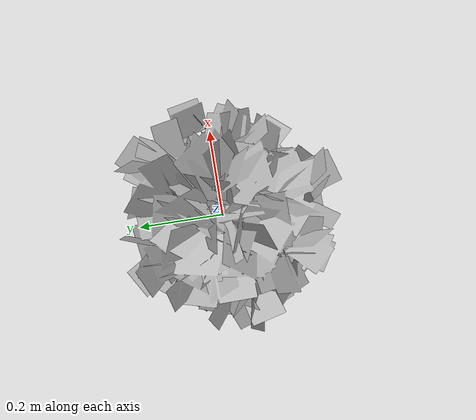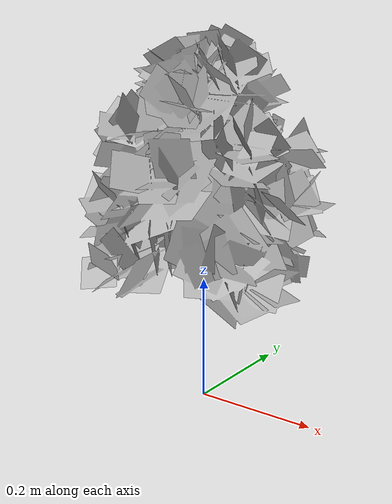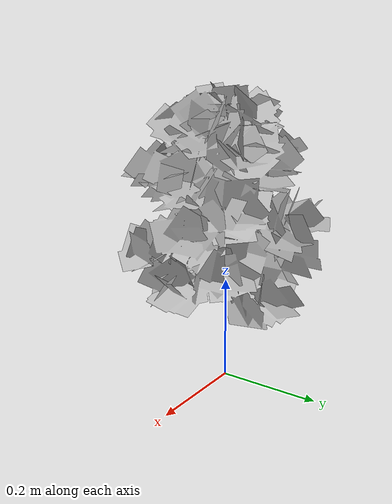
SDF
<?xml version="1.0" ?>
<sdf version="1.6">
  <model name="low_poly_stylized_mossy_rocks">
    <static>true</static>
    <link name="link">
      <visual name="visual">
        <geometry>
          <mesh>
            <uri>model://low_poly_stylized_mossy_rocks/Untitled.obj</uri>
            <scale>0.000412 0.000412 0.000412</scale>
          </mesh>
        </geometry>
      </visual>
                  <collision name="collision">
        <geometry>
          <mesh>
            <uri>model://low_poly_stylized_mossy_rocks/Untitled.obj</uri>
            <scale>0.000412 0.000412 0.000412</scale>
          </mesh>
        </geometry>
      </collision>
    </link>
  </model>
</sdf>
